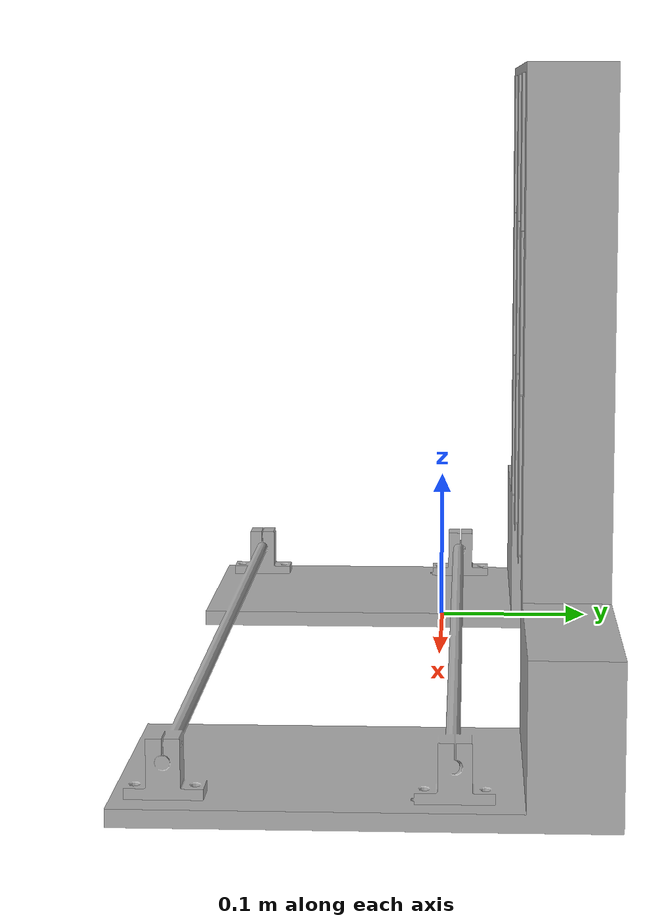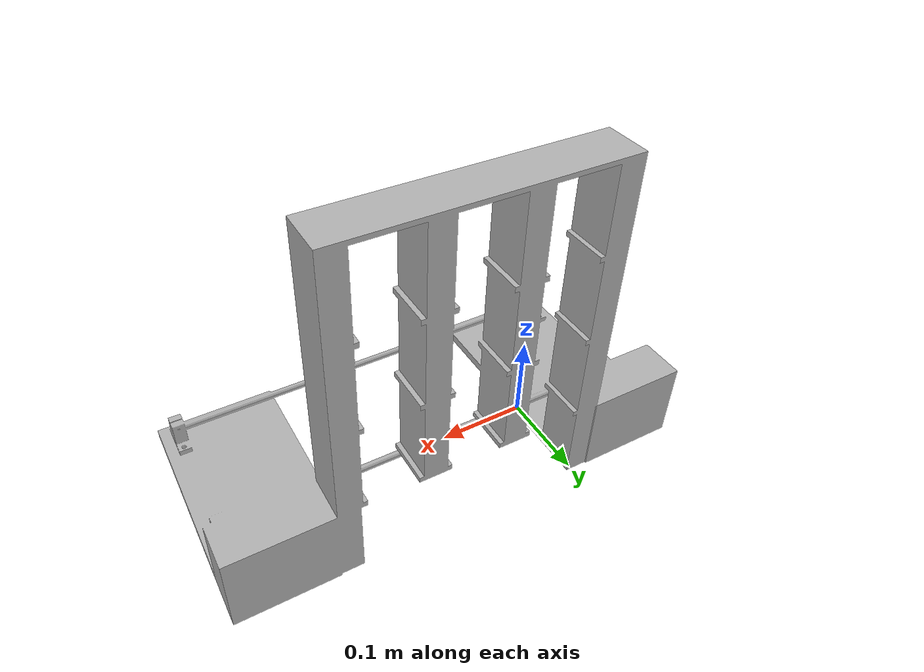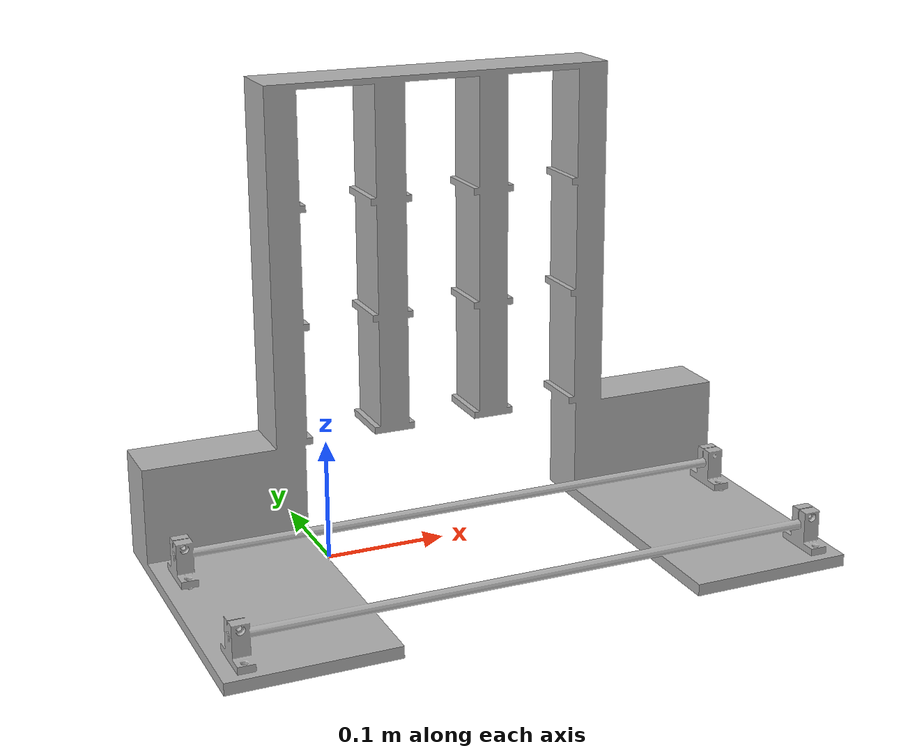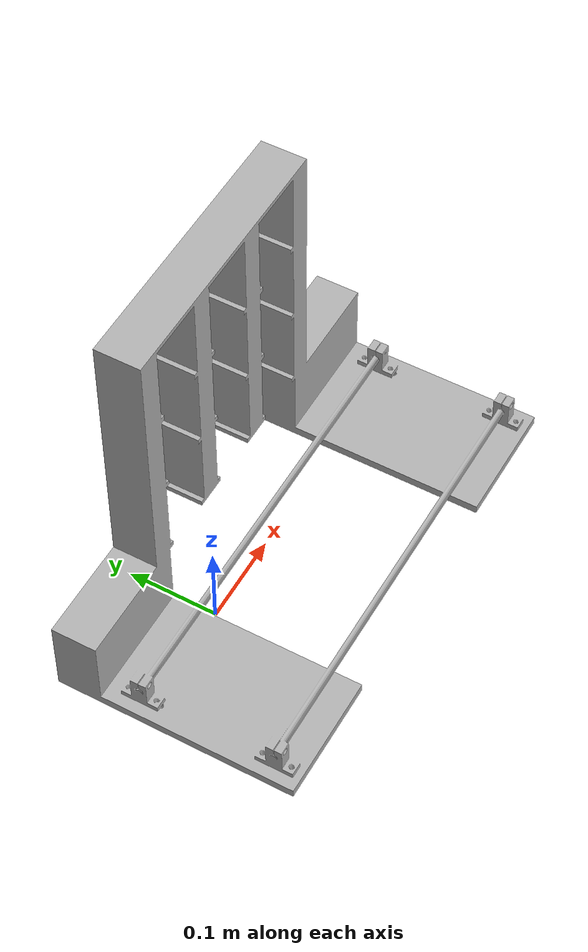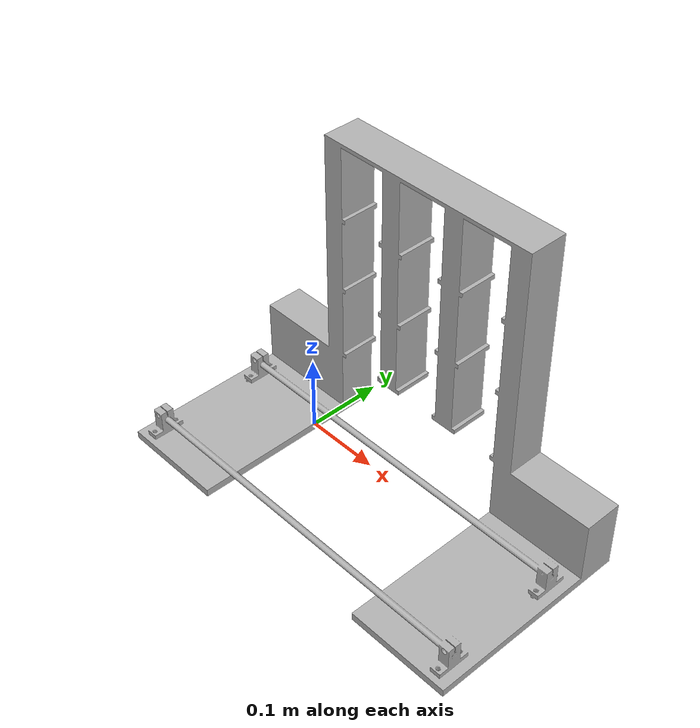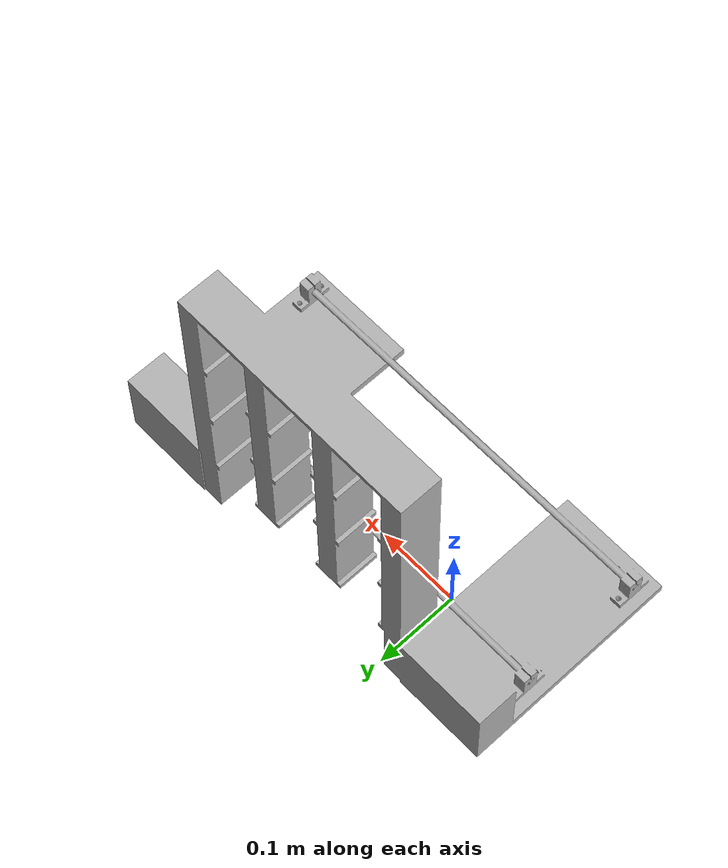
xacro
<?xml version="1.0" ?>
<robot name="New" xmlns:xacro="http://www.ros.org/wiki/xacro">

<xacro:include filename="$(find New_description)/urdf/materials.xacro" />
<xacro:include filename="$(find New_description)/urdf/New.trans" />
<xacro:include filename="$(find New_description)/urdf/New.gazebo" />
<link name="base_link">
  <inertial>
    <origin xyz="0.12365238893376494 0.0483285294968315 0.11974833678969578" rpy="0 0 0"/>
    <mass value="3.783807229463217"/>
    <inertia ixx="0.071959" iyy="0.155327" izz="0.111446" ixy="2e-06" iyz="-0.0118" ixz="-1e-06"/>
  </inertial>
  <visual>
    <origin xyz="0 0 0" rpy="0 0 0"/>
    <geometry>
      <mesh filename="package://New_description/meshes/base_link.stl" scale="0.001 0.001 0.001"/>
    </geometry>
    <material name="silver"/>
  </visual>
  <collision>
    <origin xyz="0 0 0" rpy="0 0 0"/>
    <geometry>
      <mesh filename="package://New_description/meshes/base_link.stl" scale="0.001 0.001 0.001"/>
    </geometry>
  </collision>
</link>

</robot>

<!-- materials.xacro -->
<robot name="New" xmlns:xacro="http://www.ros.org/wiki/xacro" >

<material name="silver">
  <color rgba="0.700 0.700 0.700 1.000"/>
</material>

</robot>

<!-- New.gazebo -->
<robot name="New" xmlns:xacro="http://www.ros.org/wiki/xacro" >

<xacro:property name="body_color" value="Gazebo/Silver" />

<gazebo>
  <plugin name="control" filename="libgazebo_ros_control.so"/>
</gazebo>
<gazebo reference="base_link">
  <material>${body_color}</material>
  <mu1>0.2</mu1>
  <mu2>0.2</mu2>
  <selfCollide>true</selfCollide>
  <gravity>true</gravity>
</gazebo>

</robot>
